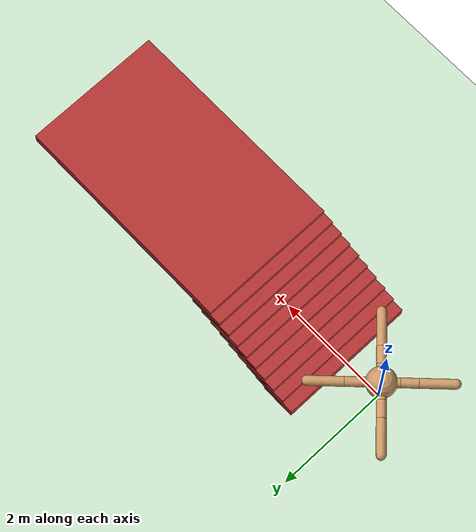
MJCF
<mujoco model="customant_stairs">
  <compiler angle="degree" coordinate="local" inertiafromgeom="true"/>
  <option integrator="RK4" timestep="0.01"/>
  <custom>
    <numeric data="0.0 0.0 0.55 1.0 0.0 0.0 0.0 0.0 1.0 0.0 -1.0 0.0 -1.0 0.0 1.0" name="init_qpos"/>
  </custom>
  <default>
    <joint armature="1" damping="1" limited="true"/>
    <geom conaffinity="0" condim="3" density="5.0" friction="1 0.5 0.5" margin="0.01" rgba="0.8 0.6 0.4 1"/>
  </default>
  <asset>
    <texture builtin="gradient" height="100" rgb1="1 1 1" rgb2="0 0 0" type="skybox" width="100"/>
    <texture builtin="flat" height="1278" mark="cross" markrgb="1 1 1" name="texgeom" random="0.01" rgb1="0.8 0.6 0.4" rgb2="0.8 0.6 0.4" type="cube" width="127"/>
    <texture builtin="checker" height="100" name="texplane" rgb1="0 0 0" rgb2="0.8 0.8 0.8" type="2d" width="100"/>
    <material name="MatPlane" reflectance="0.5" shininess="1" specular="1" texrepeat="60 60" texture="texplane"/>
    <material name="geom" texture="texgeom" texuniform="true"/>
  </asset>
  <worldbody>
    <light cutoff="100" diffuse="1 1 1" dir="-0 0 -1.3" directional="true" exponent="1" pos="0 0 1.3" specular=".1 .1 .1"/>
    <geom conaffinity="1" condim="3" material="MatPlane" name="floor" pos="0 0 0" rgba="0.8 0.9 0.8 1" size="40 40 40" type="plane"/>

    <!-- Stairs -->
    <body name="stairs" pos="1 0 0">
        <geom name="step1" type="box" size="0.3 1.2 0.1" pos="0 0 0.1" rgba="0.7 0.2 0.2 1" contype="1" conaffinity="1"/>
        <geom name="step2" type="box" size="0.3 1.2 0.1" pos="0.2 0 0.2" rgba="0.7 0.2 0.2 1" contype="1" conaffinity="1"/>
        <geom name="step3" type="box" size="0.3 1.2 0.1" pos="0.4 0 0.3" rgba="0.7 0.2 0.2 1" contype="1" conaffinity="1"/>
        <geom name="step4" type="box" size="0.3 1.2 0.1" pos="0.6 0 0.4" rgba="0.7 0.2 0.2 1" contype="1" conaffinity="1"/>
        <geom name="step5" type="box" size="0.3 1.2 0.1" pos="0.8 0 0.5" rgba="0.7 0.2 0.2 1" contype="1" conaffinity="1"/>
        <geom name="step6" type="box" size="0.3 1.2 0.1" pos="1.0 0 0.6" rgba="0.7 0.2 0.2 1" contype="1" conaffinity="1"/>
        <geom name="step7" type="box" size="0.3 1.2 0.1" pos="1.2 0 0.7" rgba="0.7 0.2 0.2 1" contype="1" conaffinity="1"/>
        <geom name="step8" type="box" size="0.3 1.2 0.1" pos="1.4 0 0.8" rgba="0.7 0.2 0.2 1" contype="1" conaffinity="1"/>
        <geom name="step9" type="box" size="0.3 1.2 0.1" pos="1.6 0 0.9" rgba="0.7 0.2 0.2 1" contype="1" conaffinity="1"/>
        <geom name="step10" type="box" size="2.0 1.2 0.1" pos="3.5 0 1.0" rgba="0.7 0.2 0.2 1" contype="1" conaffinity="1"/>
    </body>

    <body name="torso" pos="0 0 0.75">
      <camera name="track" mode="trackcom" pos="0 -3 0.3" xyaxes="1 0 0 0 0 1"/>
      <geom name="torso_geom" pos="0 0 0" size="0.25" type="sphere"/>
      <joint armature="0" damping="0" limited="false" margin="0.01" name="root" pos="0 0 0" type="free"/>
      <body name="front_left_leg" pos="0 0 0">
        <geom fromto="0.0 0.0 0.0 0.2 0.2 0.0" name="aux_1_geom" size="0.08" type="capsule"/>
        <body name="aux_1" pos="0.2 0.2 0">
          <joint axis="0 0 1" name="hip_1" pos="0.0 0.0 0.0" range="-30 30" type="hinge"/>
          <geom fromto="0.0 0.0 0.0 0.2 0.2 0.0" name="left_leg_geom" size="0.08" type="capsule"/>
          <body pos="0.2 0.2 0">
            <joint axis="-1 1 0" name="ankle_1" pos="0.0 0.0 0.0" range="30 70" type="hinge"/>
            <geom fromto="0.0 0.0 0.0 0.4 0.4 0.0" name="left_ankle_geom" size="0.08" type="capsule"/>
          </body>
        </body>
      </body>
      <body name="front_right_leg" pos="0 0 0">
        <geom fromto="0.0 0.0 0.0 -0.2 0.2 0.0" name="aux_2_geom" size="0.08" type="capsule"/>
        <body name="aux_2" pos="-0.2 0.2 0">
          <joint axis="0 0 1" name="hip_2" pos="0.0 0.0 0.0" range="-30 30" type="hinge"/>
          <geom fromto="0.0 0.0 0.0 -0.2 0.2 0.0" name="right_leg_geom" size="0.08" type="capsule"/>
          <body pos="-0.2 0.2 0">
            <joint axis="1 1 0" name="ankle_2" pos="0.0 0.0 0.0" range="-70 -30" type="hinge"/>
            <geom fromto="0.0 0.0 0.0 -0.4 0.4 0.0" name="right_ankle_geom" size="0.08" type="capsule"/>
          </body>
        </body>
      </body>
      <body name="back_leg" pos="0 0 0">
        <geom fromto="0.0 0.0 0.0 -0.2 -0.2 0.0" name="aux_3_geom" size="0.08" type="capsule"/>
        <body name="aux_3" pos="-0.2 -0.2 0">
          <joint axis="0 0 1" name="hip_3" pos="0.0 0.0 0.0" range="-30 30" type="hinge"/>
          <geom fromto="0.0 0.0 0.0 -0.2 -0.2 0.0" name="back_leg_geom" size="0.08" type="capsule"/>
          <body pos="-0.2 -0.2 0">
            <joint axis="-1 1 0" name="ankle_3" pos="0.0 0.0 0.0" range="-70 -30" type="hinge"/>
            <geom fromto="0.0 0.0 0.0 -0.4 -0.4 0.0" name="third_ankle_geom" size="0.08" type="capsule"/>
          </body>
        </body>
      </body>
      <body name="right_back_leg" pos="0 0 0">
        <geom fromto="0.0 0.0 0.0 0.2 -0.2 0.0" name="aux_4_geom" size="0.08" type="capsule"/>
        <body name="aux_4" pos="0.2 -0.2 0">
          <joint axis="0 0 1" name="hip_4" pos="0.0 0.0 0.0" range="-30 30" type="hinge"/>
          <geom fromto="0.0 0.0 0.0 0.2 -0.2 0.0" name="rightback_leg_geom" size="0.08" type="capsule"/>
          <body pos="0.2 -0.2 0">
            <joint axis="1 1 0" name="ankle_4" pos="0.0 0.0 0.0" range="30 70" type="hinge"/>
            <geom fromto="0.0 0.0 0.0 0.4 -0.4 0.0" name="fourth_ankle_geom" size="0.08" type="capsule"/>
          </body>
        </body>
      </body>
    </body>
  </worldbody>
  <actuator>
    <motor ctrllimited="true" ctrlrange="-1.0 1.0" joint="hip_4" gear="150"/>
    <motor ctrllimited="true" ctrlrange="-1.0 1.0" joint="ankle_4" gear="150"/>
    <motor ctrllimited="true" ctrlrange="-1.0 1.0" joint="hip_1" gear="150"/>
    <motor ctrllimited="true" ctrlrange="-1.0 1.0" joint="ankle_1" gear="150"/>
    <motor ctrllimited="true" ctrlrange="-1.0 1.0" joint="hip_2" gear="150"/>
    <motor ctrllimited="true" ctrlrange="-1.0 1.0" joint="ankle_2" gear="150"/>
    <motor ctrllimited="true" ctrlrange="-1.0 1.0" joint="hip_3" gear="150"/>
    <motor ctrllimited="true" ctrlrange="-1.0 1.0" joint="ankle_3" gear="150"/>
  </actuator>
</mujoco>
